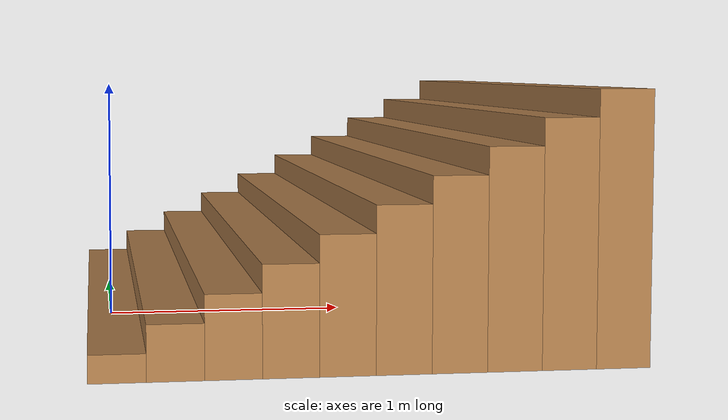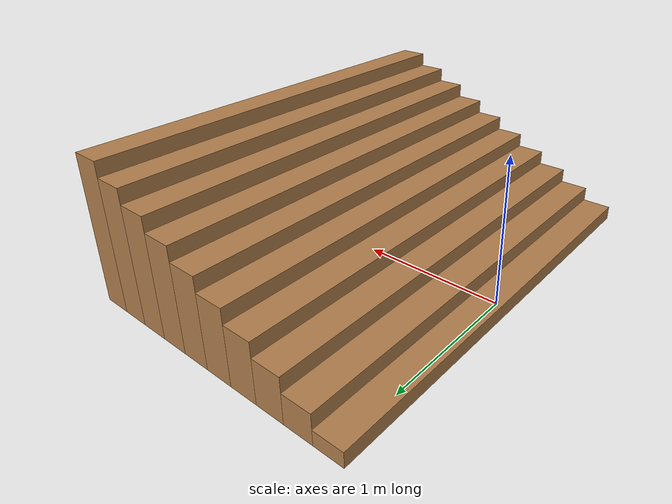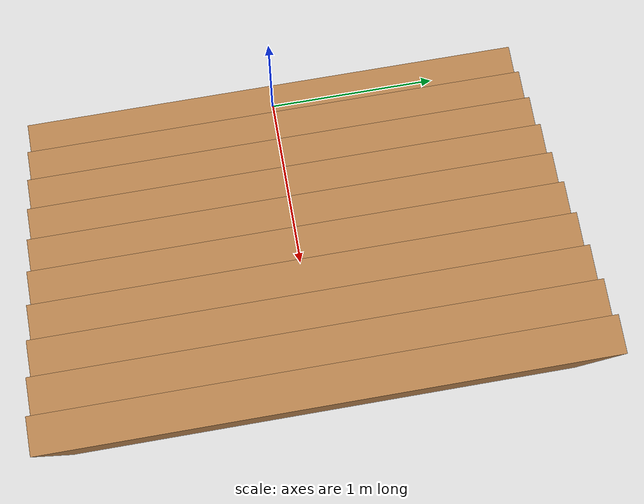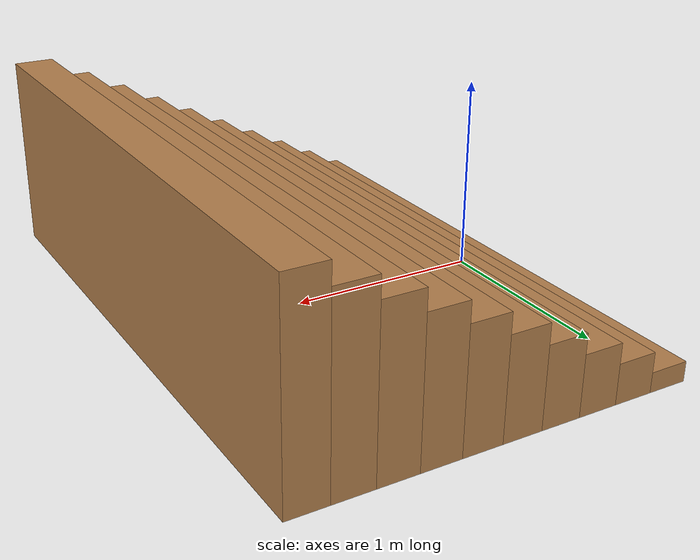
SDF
<?xml version="1.0" ?>
<sdf version="1.4">
  <model name="stairs_10">
    <static>1</static>
    <link name="link">
            <collision name="stairs_10_collision0">
        <pose>0.0 0.0 0.05 0.0 0.0 0.0</pose>
        <geometry>
          <box>
            <size>0.2 3.0 0.1</size>
          </box>
        </geometry>
        <surface>
          <bounce />
          <friction>
            <ode>
              <mu>0.7</mu>
              <mu2>0.72</mu2>
            </ode>
          </friction>
          <contact>
            <ode>
              <kp>10000000.0</kp>
              <kd>1.0</kd>
              <min_depth>0.0</min_depth>
              <max_vel>0.0</max_vel>
            </ode>
          </contact>
        </surface>
      </collision>
      <visual name="stairs_10_visual0">
        <pose>0.0 0.0 0.05 0.0 0.0 0.0</pose>
        <geometry>
          <box>
            <size>0.2 3.0 0.1</size>
          </box>
        </geometry>
        <material>
          <script>
            <uri>file://media/materials/scripts/gazebo.material</uri>
            <name>Gazebo/Wood</name>
          </script>
        </material>
      </visual>
      <collision name="stairs_10_collision1">
        <pose>0.2 0.0 0.1 0.0 0.0 0.0</pose>
        <geometry>
          <box>
            <size>0.2 3.0 0.2</size>
          </box>
        </geometry>
        <surface>
          <bounce />
          <friction>
            <ode>
              <mu>0.7</mu>
              <mu2>0.72</mu2>
            </ode>
          </friction>
          <contact>
            <ode>
              <kp>10000000.0</kp>
              <kd>1.0</kd>
              <min_depth>0.0</min_depth>
              <max_vel>0.0</max_vel>
            </ode>
          </contact>
        </surface>
      </collision>
      <visual name="stairs_10_visual1">
        <pose>0.2 0.0 0.1 0.0 0.0 0.0</pose>
        <geometry>
          <box>
            <size>0.2 3.0 0.2</size>
          </box>
        </geometry>
        <material>
          <script>
            <uri>file://media/materials/scripts/gazebo.material</uri>
            <name>Gazebo/Wood</name>
          </script>
        </material>
      </visual>
      <collision name="stairs_10_collision2">
        <pose>0.4 0.0 0.15 0.0 0.0 0.0</pose>
        <geometry>
          <box>
            <size>0.2 3.0 0.3</size>
          </box>
        </geometry>
        <surface>
          <bounce />
          <friction>
            <ode>
              <mu>0.7</mu>
              <mu2>0.72</mu2>
            </ode>
          </friction>
          <contact>
            <ode>
              <kp>10000000.0</kp>
              <kd>1.0</kd>
              <min_depth>0.0</min_depth>
              <max_vel>0.0</max_vel>
            </ode>
          </contact>
        </surface>
      </collision>
      <visual name="stairs_10_visual2">
        <pose>0.4 0.0 0.15 0.0 0.0 0.0</pose>
        <geometry>
          <box>
            <size>0.2 3.0 0.3</size>
          </box>
        </geometry>
        <material>
          <script>
            <uri>file://media/materials/scripts/gazebo.material</uri>
            <name>Gazebo/Wood</name>
          </script>
        </material>
      </visual>
      <collision name="stairs_10_collision3">
        <pose>0.6 0.0 0.2 0.0 0.0 0.0</pose>
        <geometry>
          <box>
            <size>0.2 3.0 0.4</size>
          </box>
        </geometry>
        <surface>
          <bounce />
          <friction>
            <ode>
              <mu>0.7</mu>
              <mu2>0.72</mu2>
            </ode>
          </friction>
          <contact>
            <ode>
              <kp>10000000.0</kp>
              <kd>1.0</kd>
              <min_depth>0.0</min_depth>
              <max_vel>0.0</max_vel>
            </ode>
          </contact>
        </surface>
      </collision>
      <visual name="stairs_10_visual3">
        <pose>0.6 0.0 0.2 0.0 0.0 0.0</pose>
        <geometry>
          <box>
            <size>0.2 3.0 0.4</size>
          </box>
        </geometry>
        <material>
          <script>
            <uri>file://media/materials/scripts/gazebo.material</uri>
            <name>Gazebo/Wood</name>
          </script>
        </material>
      </visual>
      <collision name="stairs_10_collision4">
        <pose>0.8 0.0 0.25 0.0 0.0 0.0</pose>
        <geometry>
          <box>
            <size>0.2 3.0 0.5</size>
          </box>
        </geometry>
        <surface>
          <bounce />
          <friction>
            <ode>
              <mu>0.7</mu>
              <mu2>0.72</mu2>
            </ode>
          </friction>
          <contact>
            <ode>
              <kp>10000000.0</kp>
              <kd>1.0</kd>
              <min_depth>0.0</min_depth>
              <max_vel>0.0</max_vel>
            </ode>
          </contact>
        </surface>
      </collision>
      <visual name="stairs_10_visual4">
        <pose>0.8 0.0 0.25 0.0 0.0 0.0</pose>
        <geometry>
          <box>
            <size>0.2 3.0 0.5</size>
          </box>
        </geometry>
        <material>
          <script>
            <uri>file://media/materials/scripts/gazebo.material</uri>
            <name>Gazebo/Wood</name>
          </script>
        </material>
      </visual>
      <collision name="stairs_10_collision5">
        <pose>1.0 0.0 0.3 0.0 0.0 0.0</pose>
        <geometry>
          <box>
            <size>0.2 3.0 0.6</size>
          </box>
        </geometry>
        <surface>
          <bounce />
          <friction>
            <ode>
              <mu>0.7</mu>
              <mu2>0.72</mu2>
            </ode>
          </friction>
          <contact>
            <ode>
              <kp>10000000.0</kp>
              <kd>1.0</kd>
              <min_depth>0.0</min_depth>
              <max_vel>0.0</max_vel>
            </ode>
          </contact>
        </surface>
      </collision>
      <visual name="stairs_10_visual5">
        <pose>1.0 0.0 0.3 0.0 0.0 0.0</pose>
        <geometry>
          <box>
            <size>0.2 3.0 0.6</size>
          </box>
        </geometry>
        <material>
          <script>
            <uri>file://media/materials/scripts/gazebo.material</uri>
            <name>Gazebo/Wood</name>
          </script>
        </material>
      </visual>
      <collision name="stairs_10_collision6">
        <pose>1.2 0.0 0.35 0.0 0.0 0.0</pose>
        <geometry>
          <box>
            <size>0.2 3.0 0.7</size>
          </box>
        </geometry>
        <surface>
          <bounce />
          <friction>
            <ode>
              <mu>0.7</mu>
              <mu2>0.72</mu2>
            </ode>
          </friction>
          <contact>
            <ode>
              <kp>10000000.0</kp>
              <kd>1.0</kd>
              <min_depth>0.0</min_depth>
              <max_vel>0.0</max_vel>
            </ode>
          </contact>
        </surface>
      </collision>
      <visual name="stairs_10_visual6">
        <pose>1.2 0.0 0.35 0.0 0.0 0.0</pose>
        <geometry>
          <box>
            <size>0.2 3.0 0.7</size>
          </box>
        </geometry>
        <material>
          <script>
            <uri>file://media/materials/scripts/gazebo.material</uri>
            <name>Gazebo/Wood</name>
          </script>
        </material>
      </visual>
      <collision name="stairs_10_collision7">
        <pose>1.4 0.0 0.4 0.0 0.0 0.0</pose>
        <geometry>
          <box>
            <size>0.2 3.0 0.8</size>
          </box>
        </geometry>
        <surface>
          <bounce />
          <friction>
            <ode>
              <mu>0.7</mu>
              <mu2>0.72</mu2>
            </ode>
          </friction>
          <contact>
            <ode>
              <kp>10000000.0</kp>
              <kd>1.0</kd>
              <min_depth>0.0</min_depth>
              <max_vel>0.0</max_vel>
            </ode>
          </contact>
        </surface>
      </collision>
      <visual name="stairs_10_visual7">
        <pose>1.4 0.0 0.4 0.0 0.0 0.0</pose>
        <geometry>
          <box>
            <size>0.2 3.0 0.8</size>
          </box>
        </geometry>
        <material>
          <script>
            <uri>file://media/materials/scripts/gazebo.material</uri>
            <name>Gazebo/Wood</name>
          </script>
        </material>
      </visual>
      <collision name="stairs_10_collision8">
        <pose>1.6 0.0 0.45 0.0 0.0 0.0</pose>
        <geometry>
          <box>
            <size>0.2 3.0 0.9</size>
          </box>
        </geometry>
        <surface>
          <bounce />
          <friction>
            <ode>
              <mu>0.7</mu>
              <mu2>0.72</mu2>
            </ode>
          </friction>
          <contact>
            <ode>
              <kp>10000000.0</kp>
              <kd>1.0</kd>
              <min_depth>0.0</min_depth>
              <max_vel>0.0</max_vel>
            </ode>
          </contact>
        </surface>
      </collision>
      <visual name="stairs_10_visual8">
        <pose>1.6 0.0 0.45 0.0 0.0 0.0</pose>
        <geometry>
          <box>
            <size>0.2 3.0 0.9</size>
          </box>
        </geometry>
        <material>
          <script>
            <uri>file://media/materials/scripts/gazebo.material</uri>
            <name>Gazebo/Wood</name>
          </script>
        </material>
      </visual>
      <collision name="stairs_10_collision9">
        <pose>1.8 0.0 0.5 0.0 0.0 0.0</pose>
        <geometry>
          <box>
            <size>0.2 3.0 1.0</size>
          </box>
        </geometry>
        <surface>
          <bounce />
          <friction>
            <ode>
              <mu>0.7</mu>
              <mu2>0.72</mu2>
            </ode>
          </friction>
          <contact>
            <ode>
              <kp>10000000.0</kp>
              <kd>1.0</kd>
              <min_depth>0.0</min_depth>
              <max_vel>0.0</max_vel>
            </ode>
          </contact>
        </surface>
      </collision>
      <visual name="stairs_10_visual9">
        <pose>1.8 0.0 0.5 0.0 0.0 0.0</pose>
        <geometry>
          <box>
            <size>0.2 3.0 1.0</size>
          </box>
        </geometry>
        <material>
          <script>
            <uri>file://media/materials/scripts/gazebo.material</uri>
            <name>Gazebo/Wood</name>
          </script>
        </material>
      </visual>

      <velocity_decay>
        <linear>0.000000</linear>
        <angular>0.000000</angular>
      </velocity_decay>
      <self_collide>0</self_collide>
      <kinematic>0</kinematic>
      <gravity>1</gravity>
    </link>
  </model>
</sdf>
